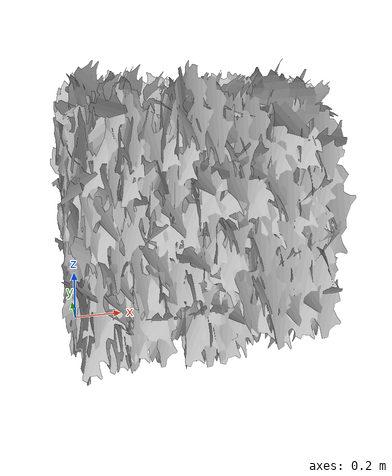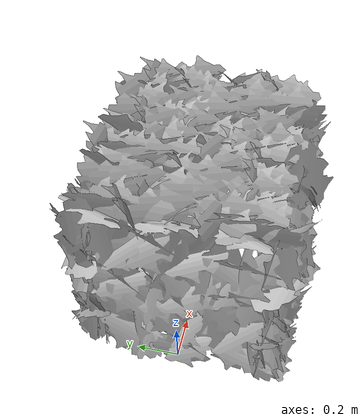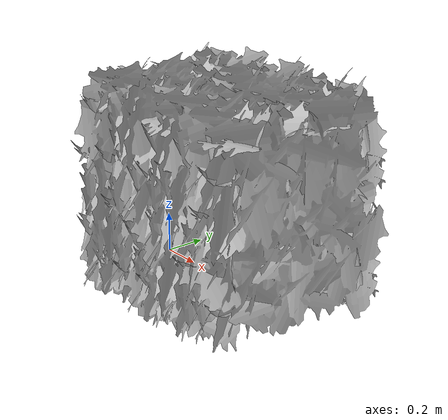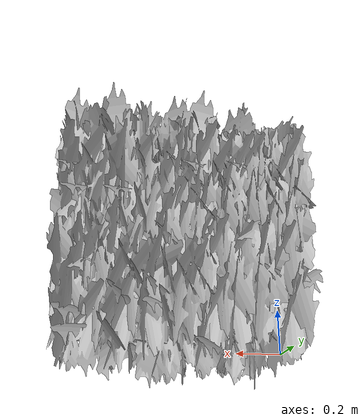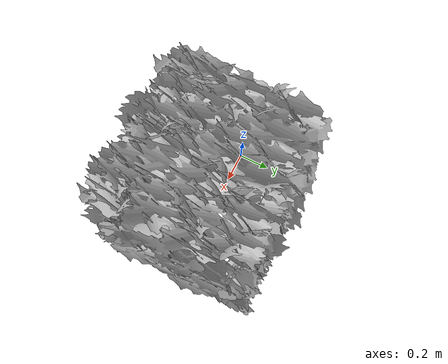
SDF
<?xml version='1.0'?>
<sdf version='1.4'>
  <model name="Bush_1">
    <static>true</static>
    <pose>0 0 0 0 0 0</pose>

    <link name="Bush_1">
      <visual name="Bush_1">
        <geometry>
          <mesh>
            <uri>model://Bush_1/Bush 1.dae</uri>
          </mesh>
        </geometry>
      </visual>
      <collision name="Bush_1">
        <geometry>
          <mesh>
            <uri>model://Bush_1/Bush 1.dae</uri>
          </mesh>
        </geometry>
      </collision>
    </link>

  </model>
</sdf>
